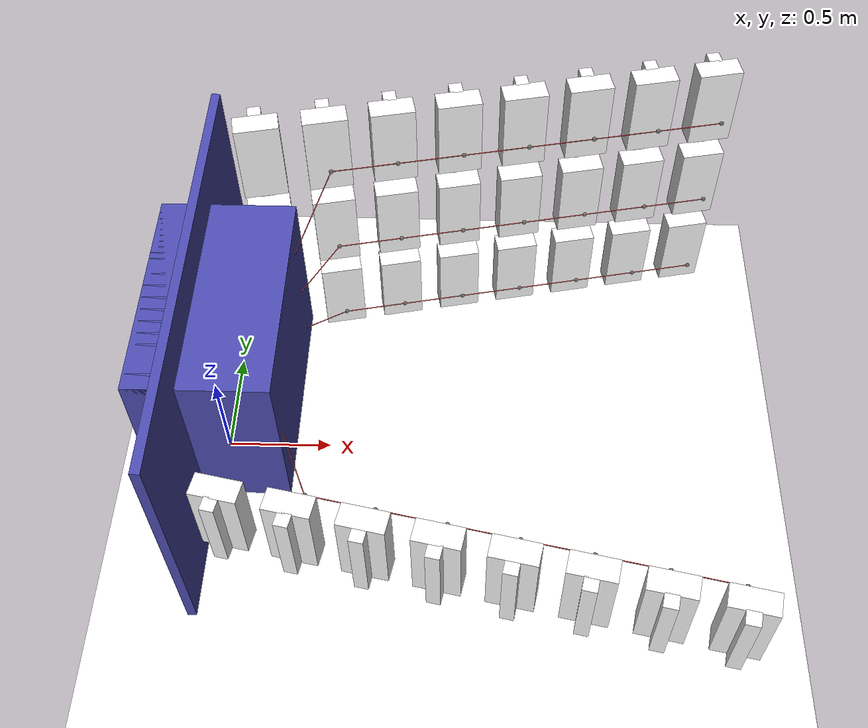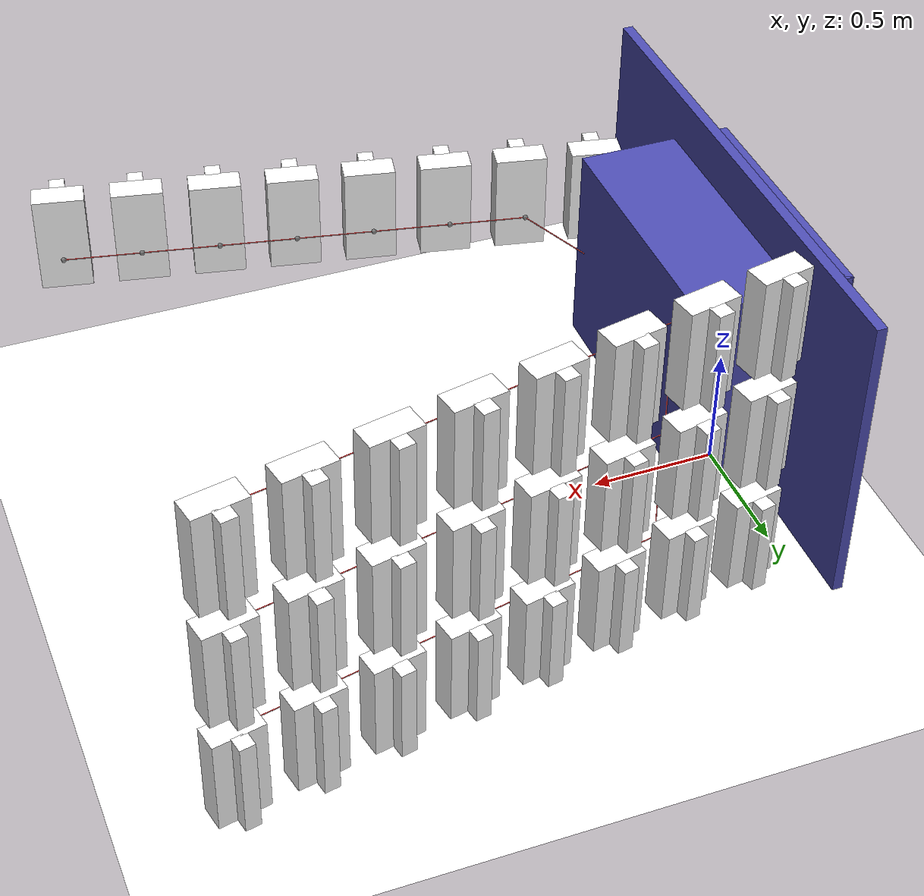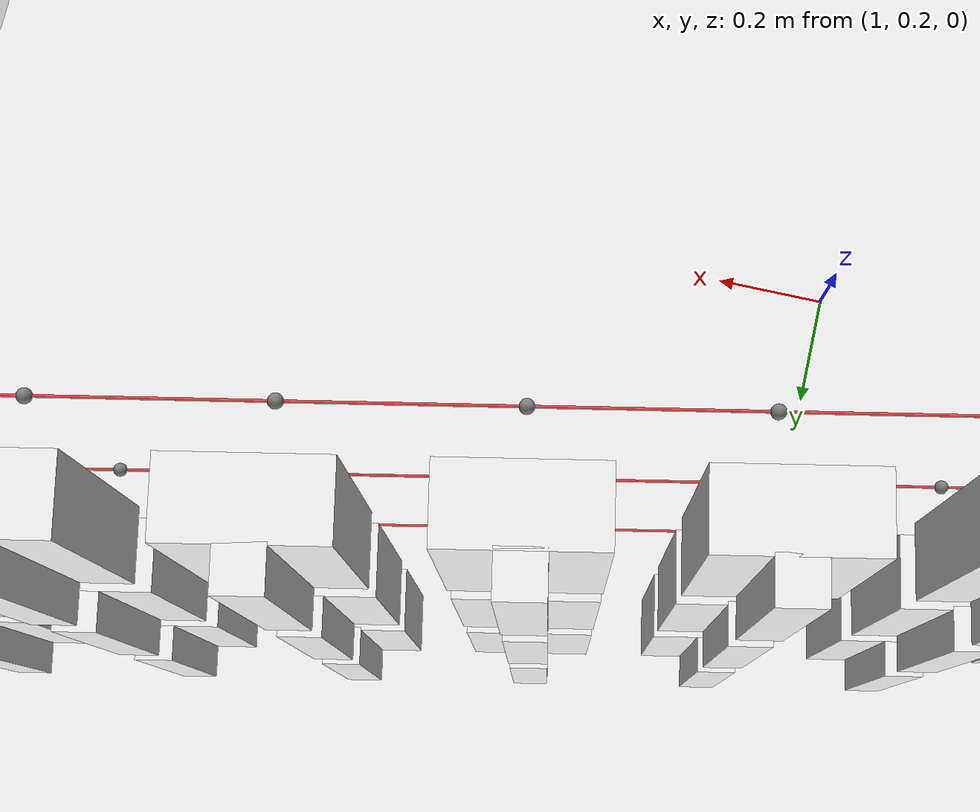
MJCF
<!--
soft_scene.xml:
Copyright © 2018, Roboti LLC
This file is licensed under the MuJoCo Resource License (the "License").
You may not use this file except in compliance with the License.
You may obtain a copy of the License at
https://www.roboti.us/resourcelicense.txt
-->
<mujoco model="soft gripper">

    <compiler angle="radian"
              inertiafromgeom="auto"/>

    <include file="soft_scene.xml"/>

    <size nconmax="500" njmax="5000" nstack="5000000"/>

    <default>
        <geom density="1" contype="1" conaffinity="1" rgba=".99 .99 .99 1" group="1"/>
        <joint limited="true"/>
        <site type="sphere" size="0.01"/>
        <tendon width="0.02"/>

        <!-- CHANGE HERE-->
        <!-- All changes rearding joint dynamics, box sizes, etc. can be adjusted from here! Digging
        In XML is not advised/-->
        <default class="gripper_sticks_main">
            <geom type="box" size="0.1 0.05 0.2" mass="0.1" contype="1" conaffinity="1"/>
        </default>

        <!-- Looking from the behind -->
        <default class="finger_left_util">
            <joint type="hinge" range="-0.2 0.05"/>
            <site pos="0 -0.15 0"/>
            <geom type="box" pos="0 0.075 0" size="0.03 0.03 0.2" mass="0.05" contype="1" conaffinity="1"/>
        </default>

        <default class="finger_right_util">
            <joint type="hinge" range="-0.05 0.2"/>
            <site pos="0 0.15 0"/>
            <geom type="box" pos="0 -0.075 0" size="0.03 0.03 0.2" mass="0.05" contype="1" conaffinity="1"/>
        </default>

        <default class="finger_adduction">
            <joint type="hinge" axis="0 1 0" stiffness="9" damping="9" limited="true" range="-0.01 0.01"/>
        </default>

        <default class="tinger_twist">
            <joint type="hinge" axis="1 0 0" stiffness="9" damping="99" limited="true" range="-0.01 0.01"/>
        </default>

        <default class="base">
            <geom type="box" quat="0.7 0.7 0.7 0.7" rgba="0.3 0.3 0.7 1"/>
        </default>

    </default>

    <worldbody>
        <body pos="0 0 0.8">

            <!-- GRIPPER BASE-->
            <site name="sBase" pos="0.22 0 0"/>
            <geom class="base" size="0.5 0.4 0.1" pos="-0.1 0 0"/>
            <geom class="base" size="1.0 0.6 0.02"/>
            <geom class="base" size="0.5 0.4 0.3" pos="0.1 0 0"/>

            <!-- FINGERS LEFT -->
            <body pos="0.2 0.7 0.5" quat="3 0 0 0.3">
                <body pos="0.03 0 0">
                    <geom class="gripper_sticks_main" name="g11"/>
                    <geom class="finger_left_util"/>
                    <joint class="finger_adduction"/>
                    <joint class="tinger_twist"/>
                    <body pos="0.3 0 0">
                        <geom class="gripper_sticks_main" name="g112"/>
                        <geom class="finger_left_util"/>
                        <joint class="finger_left_util"/>
                        <joint class="tinger_twist"/>
                        <site name="s112" class="finger_left_util"/>
                        <body pos="0.3 0 0">
                            <geom class="gripper_sticks_main" name="g113"/>
                            <geom class="finger_left_util"/>
                            <joint class="finger_left_util"/>
                            <joint class="tinger_twist"/>
                            <site name="s113" class="finger_left_util"/>
                            <body pos="0.3 0 0">
                                <geom class="gripper_sticks_main" name="g114"/>
                                <geom class="finger_left_util"/>
                                <joint class="finger_left_util"/>
                                <joint class="tinger_twist"/>
                                <site name="s114" class="finger_left_util"/>
                                <body pos="0.3 0 0">
                                    <geom class="gripper_sticks_main" name="g115"/>
                                    <geom class="finger_left_util"/>
                                    <joint class="finger_left_util"/>
                                    <joint class="tinger_twist"/>
                                    <site name="s115" class="finger_left_util"/>
                                    <body pos="0.3 0 0">
                                        <geom class="gripper_sticks_main" name="g116"/>
                                        <geom class="finger_left_util"/>
                                        <joint class="finger_left_util"/>
                                        <joint class="tinger_twist"/>
                                        <site name="s116" class="finger_left_util"/>
                                        <body pos="0.3 0 0">
                                            <geom class="gripper_sticks_main" name="g117"/>
                                            <geom class="finger_left_util"/>
                                            <joint class="finger_left_util"/>
                                            <joint class="tinger_twist"/>
                                            <site name="s117" class="finger_left_util"/>
                                            <body pos="0.3 0 0">
                                                <geom class="gripper_sticks_main" name="g118"/>
                                                <geom class="finger_left_util"/>
                                                <joint class="finger_left_util"/>
                                                <joint class="tinger_twist"/>
                                                <site name="s118" class="finger_left_util"/>
                                            </body>
                                        </body>
                                    </body>
                                </body>
                            </body>
                        </body>
                    </body>
                </body>
            </body>
            <body pos="0.2 0.7 0" quat="3 0 0 0.3">
                <body pos="0.03 0 0">
                    <geom class="gripper_sticks_main" name="g121"/>
                    <geom class="finger_left_util"/>
                    <joint class="finger_adduction"/>
                    <joint class="tinger_twist"/>
                    <body pos="0.3 0 0">
                        <geom class="gripper_sticks_main" name="g122"/>
                        <geom class="finger_left_util"/>
                        <joint class="finger_left_util"/>
                        <joint class="tinger_twist"/>
                        <site name="s122" class="finger_left_util"/>
                        <body pos="0.3 0 0">
                            <geom class="gripper_sticks_main" name="g123"/>
                            <geom class="finger_left_util"/>
                            <joint class="finger_left_util"/>
                            <joint class="tinger_twist"/>
                            <site name="s123" class="finger_left_util"/>
                            <body pos="0.3 0 0">
                                <geom class="gripper_sticks_main" name="g124"/>
                                <geom class="finger_left_util"/>
                                <joint class="finger_left_util"/>
                                <joint class="tinger_twist"/>
                                <site name="s124" class="finger_left_util"/>
                                <body pos="0.3 0 0">
                                    <geom class="gripper_sticks_main" name="g125"/>
                                    <geom class="finger_left_util"/>
                                    <joint class="finger_left_util"/>
                                    <joint class="tinger_twist"/>
                                    <site name="s125" class="finger_left_util"/>
                                    <body pos="0.3 0 0">
                                        <geom class="gripper_sticks_main" name="g126"/>
                                        <geom class="finger_left_util"/>
                                        <joint class="finger_left_util"/>
                                        <joint class="tinger_twist"/>
                                        <site name="s126" class="finger_left_util"/>
                                        <body pos="0.3 0 0">
                                            <geom class="gripper_sticks_main" name="g127"/>
                                            <geom class="finger_left_util"/>
                                            <joint class="finger_left_util"/>
                                            <joint class="tinger_twist"/>
                                            <site name="s127" class="finger_left_util"/>
                                            <body pos="0.3 0 0">
                                                <geom class="gripper_sticks_main" name="g128"/>
                                                <geom class="finger_left_util"/>
                                                <joint class="finger_left_util"/>
                                                <joint class="tinger_twist"/>
                                                <site name="s128" class="finger_left_util"/>
                                            </body>
                                        </body>
                                    </body>
                                </body>
                            </body>
                        </body>
                    </body>
                </body>
            </body>
            <body pos="0.2 0.7 -0.5" quat="3 0 0 0.3">
                <body pos="0.03 0 0">
                    <geom class="gripper_sticks_main" name="g131"/>
                    <geom class="finger_left_util"/>
                    <joint class="finger_adduction"/>
                    <joint class="tinger_twist"/>
                    <body pos="0.3 0 0">
                        <geom class="gripper_sticks_main" name="g132"/>
                        <geom class="finger_left_util"/>
                        <joint class="finger_left_util"/>
                        <site name="s132" class="finger_left_util"/>
                        <joint class="tinger_twist"/>
                        <body pos="0.3 0 0">
                            <geom class="gripper_sticks_main" name="g133"/>
                            <geom class="finger_left_util"/>
                            <joint class="finger_left_util"/>
                            <joint class="tinger_twist"/>
                            <site name="s133" class="finger_left_util"/>
                            <body pos="0.3 0 0">
                                <geom class="gripper_sticks_main" name="g134"/>
                                <geom class="finger_left_util"/>
                                <joint class="finger_left_util"/>
                                <joint class="tinger_twist"/>
                                <site name="s134" class="finger_left_util"/>
                                <body pos="0.3 0 0">
                                    <geom class="gripper_sticks_main" name="g135"/>
                                    <geom class="finger_left_util"/>
                                    <joint class="finger_left_util"/>
                                    <joint class="tinger_twist"/>
                                    <site name="s135" class="finger_left_util"/>
                                    <body pos="0.3 0 0">
                                        <geom class="gripper_sticks_main" name="g136"/>
                                        <geom class="finger_left_util"/>
                                        <joint class="finger_left_util"/>
                                        <joint class="tinger_twist"/>
                                        <site name="s136" class="finger_left_util"/>
                                        <body pos="0.3 0 0">
                                            <geom class="gripper_sticks_main" name="g137"/>
                                            <geom class="finger_left_util"/>
                                            <joint class="finger_left_util"/>
                                            <joint class="tinger_twist"/>
                                            <site name="s137" class="finger_left_util"/>
                                            <body pos="0.3 0 0">
                                                <geom class="gripper_sticks_main" name="g138"/>
                                                <geom class="finger_left_util"/>
                                                <joint class="finger_left_util"/>
                                                <joint class="tinger_twist"/>
                                                <site name="s138" class="finger_left_util"/>
                                            </body>
                                        </body>
                                    </body>
                                </body>
                            </body>
                        </body>
                    </body>
                </body>
            </body>

            <!-- FINGER RIGHT -->
            <body pos="0.1 -0.8 0" quat="-3 0 0 0.3">
                <body pos="0.1 0 0">
                    <geom class="gripper_sticks_main" name="g21"/>
                    <geom class="finger_right_util"/>
                    <joint class="finger_right_util"/>
                    <joint class="finger_adduction"/>
                    <joint class="tinger_twist"/>
                    <body pos="0.3 0 0">
                        <geom class="gripper_sticks_main" name="g22"/>
                        <geom class="finger_right_util"/>
                        <joint class="finger_right_util"/>
                        <joint class="tinger_twist"/>
                        <site name="s22" class="finger_right_util"/>
                        <body pos="0.3 0 0">
                            <geom class="gripper_sticks_main" name="g23"/>
                            <geom class="finger_right_util"/>
                            <joint class="finger_right_util"/>
                            <joint class="tinger_twist"/>
                            <site name="s23" class="finger_right_util"/>
                            <body pos="0.3 0 0">
                                <geom class="gripper_sticks_main" name="g24"/>
                                <geom class="finger_right_util"/>
                                <joint class="finger_right_util"/>
                                <joint class="tinger_twist"/>
                                <site name="s24" class="finger_right_util"/>
                                <body pos="0.3 0 0">
                                    <geom class="gripper_sticks_main" name="g25"/>
                                    <geom class="finger_right_util"/>
                                    <joint class="finger_right_util"/>
                                    <joint class="tinger_twist"/>
                                    <site name="s25" class="finger_right_util"/>
                                    <body pos="0.3 0 0">
                                        <geom class="gripper_sticks_main" name="g26"/>
                                        <geom class="finger_right_util"/>
                                        <joint class="finger_right_util"/>
                                        <joint class="tinger_twist"/>
                                        <site name="s26" class="finger_right_util"/>
                                        <body pos="0.3 0 0">
                                            <geom class="gripper_sticks_main" name="g27"/>
                                            <geom class="finger_right_util"/>
                                            <joint class="finger_right_util"/>
                                            <joint class="tinger_twist"/>
                                            <site name="s27" class="finger_right_util"/>
                                            <body pos="0.3 0 0">
                                                <geom class="gripper_sticks_main" name="g28"/>
                                                <geom class="finger_right_util"/>
                                                <joint class="finger_right_util"/>
                                                <joint class="tinger_twist"/>
                                                <site name="s28" class="finger_right_util"/>
                                            </body>
                                        </body>
                                    </body>
                                </body>
                            </body>
                        </body>
                    </body>
                </body>
            </body>
        </body>
    </worldbody>

    <!-- TENDONS-->
    <tendon>
        <spatial name="grip_l_11" width="0.002" rgba=".95 .3 .3 1">
            <site site="sBase"/>
            <site site="s112"/>
            <site site="s113"/>
            <site site="s114"/>
            <site site="s115"/>
            <site site="s116"/>
            <site site="s117"/>
            <site site="s118"/>
        </spatial>

        <spatial name="grip_l_12" width="0.002" rgba=".95 .3 .3 1">
            <site site="sBase"/>
            <site site="s122"/>
            <site site="s123"/>
            <site site="s124"/>
            <site site="s125"/>
            <site site="s126"/>
            <site site="s127"/>
            <site site="s128"/>0 0"/
        </spatial>

        <spatial name="grip_l_13" width="0.002" rgba=".95 .3 .3 1">
            <site site="sBase"/>
            <site site="s132"/>
            <site site="s133"/>
            <site site="s134"/>
            <site site="s135"/>
            <site site="s136"/>
            <site site="s137"/>
            <site site="s138"/>
        </spatial>

        <spatial name="grip_r_21" width="0.002" rgba=".95 .3 .3 1">
            <site site="sBase"/>
            <site site="s22"/>
            <site site="s23"/>
            <site site="s24"/>
            <site site="s25"/>
            <site site="s26"/>
            <site site="s27"/>
            <site site="s28"/>
        </spatial>
    </tendon>

    <!-- ACTUATORS -->
    <actuator>
        <cylinder tendon="grip_l_11" area="300"/>
        <cylinder tendon="grip_l_12" area="300"/>
        <cylinder tendon="grip_l_13" area="300"/>
        <cylinder tendon="grip_r_21"  area="300"/>
    </actuator>

    <!-- SENSORS -->
    <sensor>
        <accelerometer name="a11_sensor" site="s116"/>
        <accelerometer name="a12_sensor" site="s126"/>
        <accelerometer name="a13_sensor" site="s136"/>
        <accelerometer name="a21_sensor" site="s26"/>

        <gyro name="g11_sensor" site="s116"/>
        <gyro name="g12_sensor" site="s126"/>
        <gyro name="g13_sensor" site="s136"/>
        <gyro name="g21_sensor" site="s26"/>

    </sensor>
</mujoco>

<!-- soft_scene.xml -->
<mujoco>

    <statistic extent="2" meansize=".05"/>

    <option timestep="0.005" solver="PGS" iterations="30" tolerance="1e-7" cone="elliptic"/>

    <visual>
        <rgba haze="0.35 0.45 0.55 1"/>
        <quality shadowsize="2048"/>
        <map stiffness="700" shadowscale="0.5" fogstart="10" fogend="15" zfar="40" haze="0.3"/>
    </visual>

    <asset>
        <texture type="skybox" builtin="gradient" rgb1="0.3 0.5 0.7" rgb2="0 0 0" width="512" height="512"/>
        <texture name="texplane" type="2d" builtin="checker" rgb1=".2 .3 .4" rgb2=".1 0.15 0.2"
            width="512" height="512" mark="cross" markrgb=".8 .8 .8"/>
        <texture name="texcarpet" type="2d" file="carpet.png"/>
        <texture name="texmarble" type="cube" file="marble.png"/>

        <texture name="textennis" type="2d" file="tennis.png"/>
        <texture name="texmarshmallow" type="2d" file="marshmallow.png"/>
        <texture name="texsponge" type="2d" file="sponge.png"/>

        <material name="matplane" reflectance="0.05" texture="texplane" texrepeat="1 1" texuniform="true"/>
        <material name="matcarpet" texture="texcarpet"/>

        <material name="mattennis" texture="textennis"/>
        <material name="matmarshmallow" texture="texmarshmallow"/>
        <material name="matsponge" texture="texsponge" specular="0.3"/>

        <material name="matmarble" texture="texmarble" rgba=".7 .7 .7 1"/>
    </asset>

    <worldbody>
        <light directional="true" diffuse=".4 .4 .4" specular="0.1 0.1 0.1" pos="0 0 5.0" dir="0 0 -1" castshadow="false"/>
        <light directional="true" diffuse=".6 .6 .6" specular="0.2 0.2 0.2" pos="0 0 4" dir="0 0 -1"/>

        <geom name="ground" type="plane" size="0 0 1" pos="0 0 0" quat="1 0 0 0" material="matplane" condim="1"/>

    </worldbody>
</mujoco>
